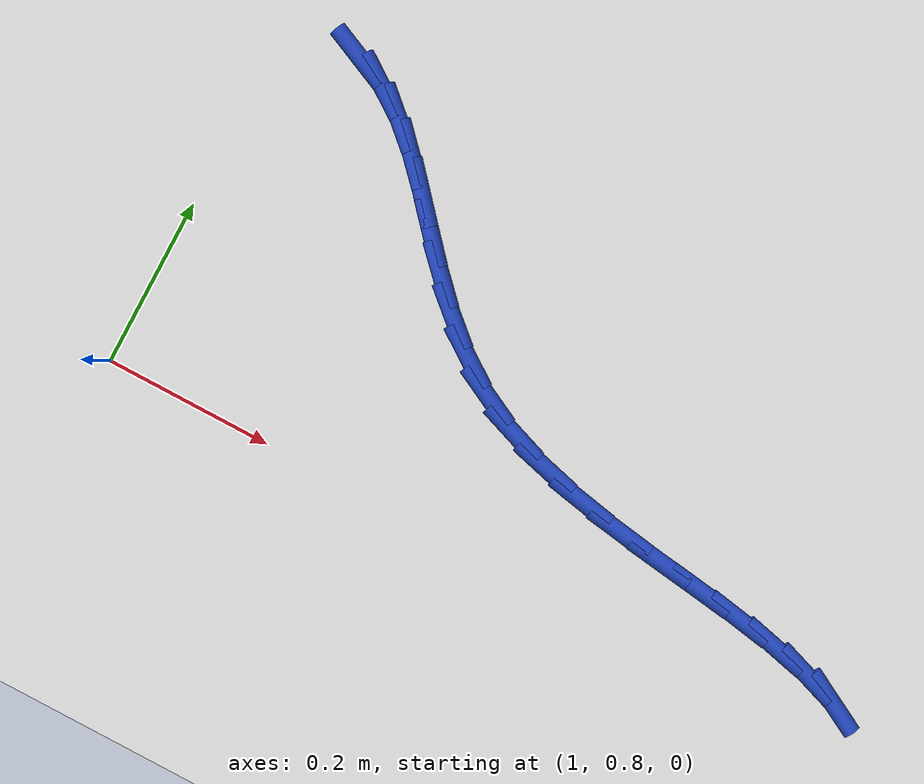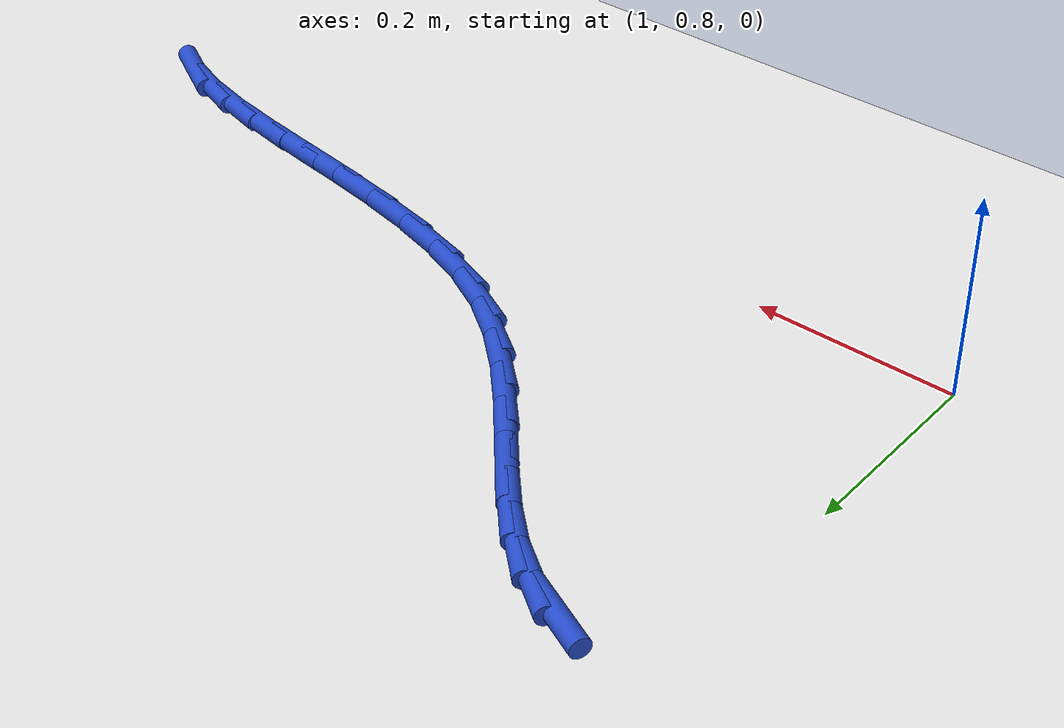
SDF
<sdf version="1.6">
 <world name="default">
  <model name="ground_plane">
   <static>1</static>
   <link name="link">
    <collision name="collision">
     <geometry><plane><normal>0 0 1</normal><size>100 100</size></plane></geometry>
     <surface><friction><ode><mu>100</mu><mu2>50</mu2></ode></friction></surface>
    </collision>
    <visual name="visual">
     <cast_shadows>0</cast_shadows>
     <geometry><plane><normal>0 0 1</normal><size>100 100</size></plane></geometry>
     <material>
      <script><uri>file://media/materials/scripts/gazebo.material</uri><name>Gazebo/WhiteGlow</name></script>
     </material>
    </visual>
   </link>
  </model>
  <model name="line">
   <link name="link_40">
    <pose>1.0883216174650845 1.232382452686573 0.01 0 1.57 -0.4235309624702591</pose>
    <collision name="collision">
     <geometry><cylinder><radius>0.01</radius><length>0.08</length></cylinder></geometry>
    </collision>
    <visual name="visual">
     <material>
      <script><name>Gazebo/Blue</name><uri>file://media/materials/scripts/gazebo.material</uri></script>
     </material>
     <geometry><cylinder><radius>0.01</radius><length>0.08</length></cylinder></geometry>
    </visual>
   </link>
   <link name="link_41">
    <pose>1.1252436023418861 1.2157374908021974 0.01 0 1.57 -0.6091120513835694</pose>
    <collision name="collision">
     <geometry><cylinder><radius>0.01</radius><length>0.08</length></cylinder></geometry>
    </collision>
    <visual name="visual">
     <material>
      <script><name>Gazebo/Blue</name><uri>file://media/materials/scripts/gazebo.material</uri></script>
     </material>
     <geometry><cylinder><radius>0.01</radius><length>0.08</length></cylinder></geometry>
    </visual>
   </link>
   <link name="link_42">
    <pose>1.1590338494181325 1.1921654826578747 0.01 0 1.57 -0.7403511831538201</pose>
    <collision name="collision">
     <geometry><cylinder><radius>0.01</radius><length>0.08</length></cylinder></geometry>
    </collision>
    <visual name="visual">
     <material>
      <script><name>Gazebo/Blue</name><uri>file://media/materials/scripts/gazebo.material</uri></script>
     </material>
     <geometry><cylinder><radius>0.01</radius><length>0.08</length></cylinder></geometry>
    </visual>
   </link>
   <link name="link_43">
    <pose>1.1907074242692988 1.1632242694156079 0.01 0 1.57 -0.8197676711153987</pose>
    <collision name="collision">
     <geometry><cylinder><radius>0.01</radius><length>0.08</length></cylinder></geometry>
    </collision>
    <visual name="visual">
     <material>
      <script><name>Gazebo/Blue</name><uri>file://media/materials/scripts/gazebo.material</uri></script>
     </material>
     <geometry><cylinder><radius>0.01</radius><length>0.08</length></cylinder></geometry>
    </visual>
   </link>
   <link name="link_44">
    <pose>1.2212807448318435 1.130473679858819 0.01 0 1.57 -0.854165402444591</pose>
    <collision name="collision">
     <geometry><cylinder><radius>0.01</radius><length>0.08</length></cylinder></geometry>
    </collision>
    <visual name="visual">
     <material>
      <script><name>Gazebo/Blue</name><uri>file://media/materials/scripts/gazebo.material</uri></script>
     </material>
     <geometry><cylinder><radius>0.01</radius><length>0.08</length></cylinder></geometry>
    </visual>
   </link>
   <link name="link_45">
    <pose>1.2517702290422241 1.0954735427709308 0.01 0 1.57 -0.8489047794096215</pose>
    <collision name="collision">
     <geometry><cylinder><radius>0.01</radius><length>0.08</length></cylinder></geometry>
    </collision>
    <visual name="visual">
     <material>
      <script><name>Gazebo/Blue</name><uri>file://media/materials/scripts/gazebo.material</uri></script>
     </material>
     <geometry><cylinder><radius>0.01</radius><length>0.08</length></cylinder></geometry>
    </visual>
   </link>
   <link name="link_46">
    <pose>1.2831922948368992 1.0597836869353658 0.01 0 1.57 -0.8066394798700118</pose>
    <collision name="collision">
     <geometry><cylinder><radius>0.01</radius><length>0.08</length></cylinder></geometry>
    </collision>
    <visual name="visual">
     <material>
      <script><name>Gazebo/Blue</name><uri>file://media/materials/scripts/gazebo.material</uri></script>
     </material>
     <geometry><cylinder><radius>0.01</radius><length>0.08</length></cylinder></geometry>
    </visual>
   </link>
   <link name="link_47">
    <pose>1.3165633601523261 1.024963941135547 0.01 0 1.57 -0.7280351660212289</pose>
    <collision name="collision">
     <geometry><cylinder><radius>0.01</radius><length>0.08</length></cylinder></geometry>
    </collision>
    <visual name="visual">
     <material>
      <script><name>Gazebo/Blue</name><uri>file://media/materials/scripts/gazebo.material</uri></script>
     </material>
     <geometry><cylinder><radius>0.01</radius><length>0.08</length></cylinder></geometry>
    </visual>
   </link>
   <link name="link_48">
    <pose>1.352899842924964 0.9925741341548966 0.01 0 1.57 -0.6136698351476273</pose>
    <collision name="collision">
     <geometry><cylinder><radius>0.01</radius><length>0.08</length></cylinder></geometry>
    </collision>
    <visual name="visual">
     <material>
      <script><name>Gazebo/Blue</name><uri>file://media/materials/scripts/gazebo.material</uri></script>
     </material>
     <geometry><cylinder><radius>0.01</radius><length>0.08</length></cylinder></geometry>
    </visual>
   </link>
   <link name="link_49">
    <pose>1.3932181610912697 0.9641740947768377 0.01 0 1.57 -0.47128126982619345</pose>
    <collision name="collision">
     <geometry><cylinder><radius>0.01</radius><length>0.08</length></cylinder></geometry>
    </collision>
    <visual name="visual">
     <material>
      <script><name>Gazebo/Blue</name><uri>file://media/materials/scripts/gazebo.material</uri></script>
     </material>
     <geometry><cylinder><radius>0.01</radius><length>0.08</length></cylinder></geometry>
    </visual>
   </link>
   <link name="link_50">
    <pose>1.43839035071041 0.9411553035657774 0.01 0 1.57 -0.3453012266294161</pose>
    <collision name="collision">
     <geometry><cylinder><radius>0.01</radius><length>0.08</length></cylinder></geometry>
    </collision>
    <visual name="visual">
     <material>
      <script><name>Gazebo/Blue</name><uri>file://media/materials/scripts/gazebo.material</uri></script>
     </material>
     <geometry><cylinder><radius>0.01</radius><length>0.08</length></cylinder></geometry>
    </visual>
   </link>
   <link name="link_51">
    <pose>1.4879365290332625 0.9233329135864541 0.01 0 1.57 -0.25382891757842035</pose>
    <collision name="collision">
     <geometry><cylinder><radius>0.01</radius><length>0.08</length></cylinder></geometry>
    </collision>
    <visual name="visual">
     <material>
      <script><name>Gazebo/Blue</name><uri>file://media/materials/scripts/gazebo.material</uri></script>
     </material>
     <geometry><cylinder><radius>0.01</radius><length>0.08</length></cylinder></geometry>
    </visual>
   </link>
   <link name="link_52">
    <pose>1.540638164307854 0.9096608185375467 0.01 0 1.57 -0.19123548136641294</pose>
    <collision name="collision">
     <geometry><cylinder><radius>0.01</radius><length>0.08</length></cylinder></geometry>
    </collision>
    <visual name="visual">
     <material>
      <script><name>Gazebo/Blue</name><uri>file://media/materials/scripts/gazebo.material</uri></script>
     </material>
     <geometry><cylinder><radius>0.01</radius><length>0.08</length></cylinder></geometry>
    </visual>
   </link>
   <link name="link_53">
    <pose>1.5952692291257269 0.899084172236776 0.01 0 1.57 -0.15305620839267559</pose>
    <collision name="collision">
     <geometry><cylinder><radius>0.01</radius><length>0.08</length></cylinder></geometry>
    </collision>
    <visual name="visual">
     <material>
      <script><name>Gazebo/Blue</name><uri>file://media/materials/scripts/gazebo.material</uri></script>
     </material>
     <geometry><cylinder><radius>0.01</radius><length>0.08</length></cylinder></geometry>
    </visual>
   </link>
   <link name="link_54">
    <pose>1.6506036960784234 0.8905481285018645 0.01 0 1.57 -0.13688773041719374</pose>
    <collision name="collision">
     <geometry><cylinder><radius>0.01</radius><length>0.08</length></cylinder></geometry>
    </collision>
    <visual name="visual">
     <material>
      <script><name>Gazebo/Blue</name><uri>file://media/materials/scripts/gazebo.material</uri></script>
     </material>
     <geometry><cylinder><radius>0.01</radius><length>0.08</length></cylinder></geometry>
    </visual>
   </link>
   <link name="link_55">
    <pose>1.705415537757486 0.8829978411505341 0.01 0 1.57 -0.14261580568403587</pose>
    <collision name="collision">
     <geometry><cylinder><radius>0.01</radius><length>0.08</length></cylinder></geometry>
    </collision>
    <visual name="visual">
     <material>
      <script><name>Gazebo/Blue</name><uri>file://media/materials/scripts/gazebo.material</uri></script>
     </material>
     <geometry><cylinder><radius>0.01</radius><length>0.08</length></cylinder></geometry>
    </visual>
   </link>
   <link name="link_56">
    <pose>1.758478726754457 0.8753784640005066 0.01 0 1.57 -0.17281605520546106</pose>
    <collision name="collision">
     <geometry><cylinder><radius>0.01</radius><length>0.08</length></cylinder></geometry>
    </collision>
    <visual name="visual">
     <material>
      <script><name>Gazebo/Blue</name><uri>file://media/materials/scripts/gazebo.material</uri></script>
     </material>
     <geometry><cylinder><radius>0.01</radius><length>0.08</length></cylinder></geometry>
    </visual>
   </link>
   <link name="link_57">
    <pose>1.8085672356608784 0.8666351508695038 0.01 0 1.57 -0.23366951964585844</pose>
    <collision name="collision">
     <geometry><cylinder><radius>0.01</radius><length>0.08</length></cylinder></geometry>
    </collision>
    <visual name="visual">
     <material>
      <script><name>Gazebo/Blue</name><uri>file://media/materials/scripts/gazebo.material</uri></script>
     </material>
     <geometry><cylinder><radius>0.01</radius><length>0.08</length></cylinder></geometry>
    </visual>
   </link>
   <link name="link_58">
    <pose>1.8544550370682924 0.8557130555752475 0.01 0 1.57 -0.33655042074562525</pose>
    <collision name="collision">
     <geometry><cylinder><radius>0.01</radius><length>0.08</length></cylinder></geometry>
    </collision>
    <visual name="visual">
     <material>
      <script><name>Gazebo/Blue</name><uri>file://media/materials/scripts/gazebo.material</uri></script>
     </material>
     <geometry><cylinder><radius>0.01</radius><length>0.08</length></cylinder></geometry>
    </visual>
   </link>
   <link name="link_59">
    <pose>1.89491610356824 0.8415573319354597 0.01 0 1.57 -0.49942205946277485</pose>
    <collision name="collision">
     <geometry><cylinder><radius>0.01</radius><length>0.08</length></cylinder></geometry>
    </collision>
    <visual name="visual">
     <material>
      <script><name>Gazebo/Blue</name><uri>file://media/materials/scripts/gazebo.material</uri></script>
     </material>
     <geometry><cylinder><radius>0.01</radius><length>0.08</length></cylinder></geometry>
    </visual>
   </link>
  </model>
 </world>
</sdf>
